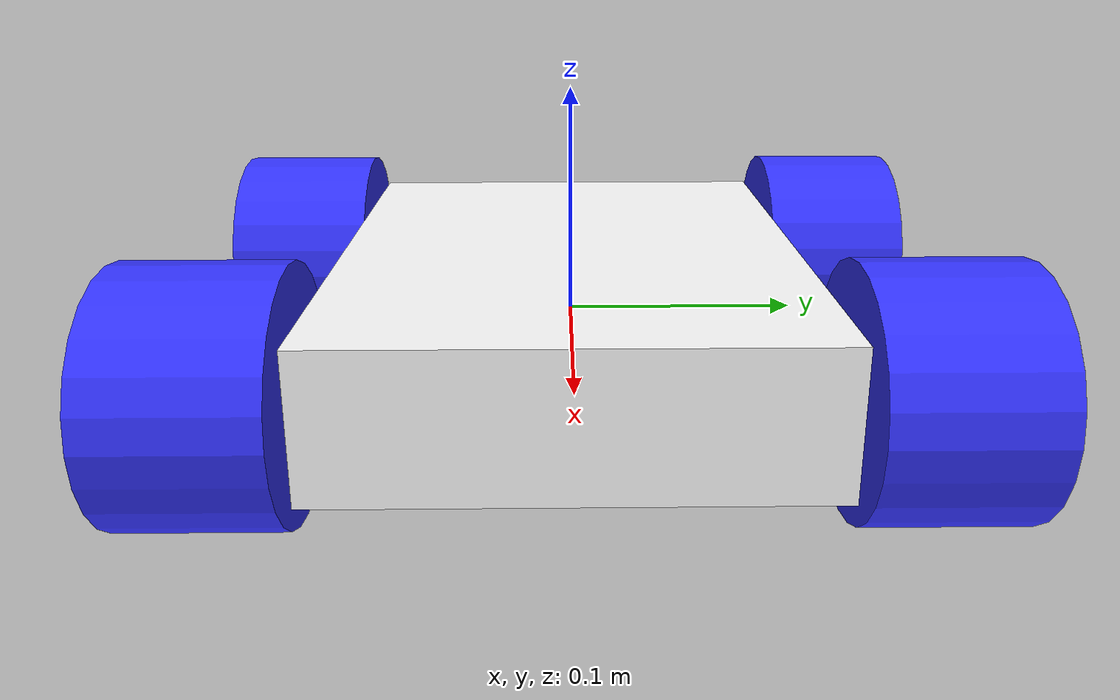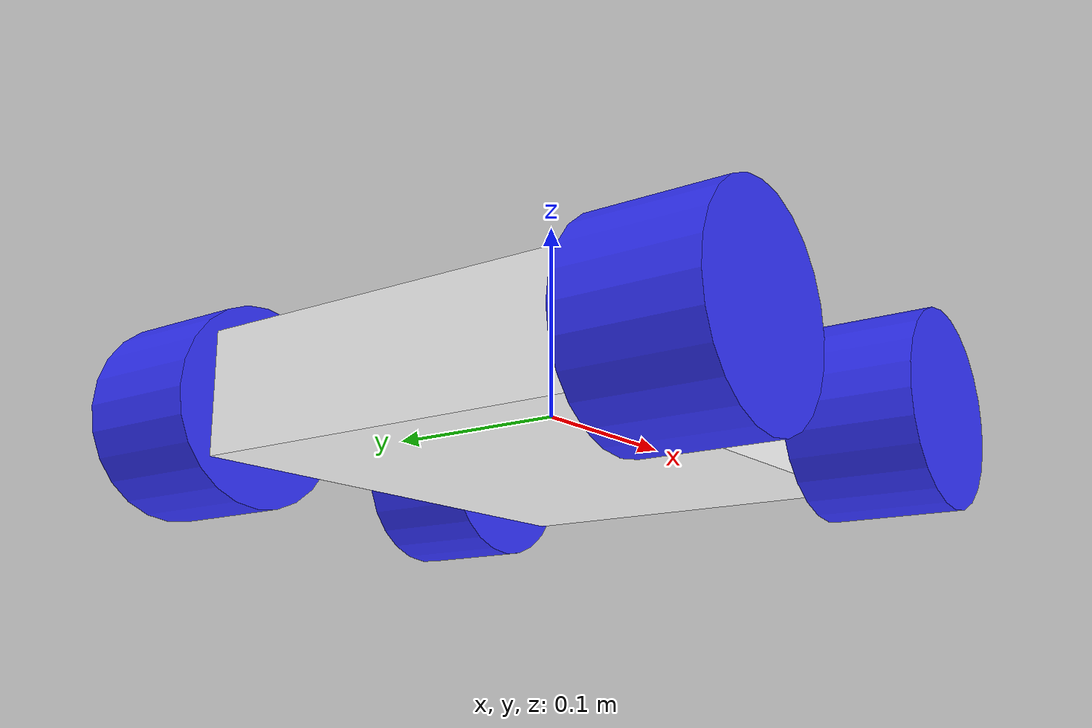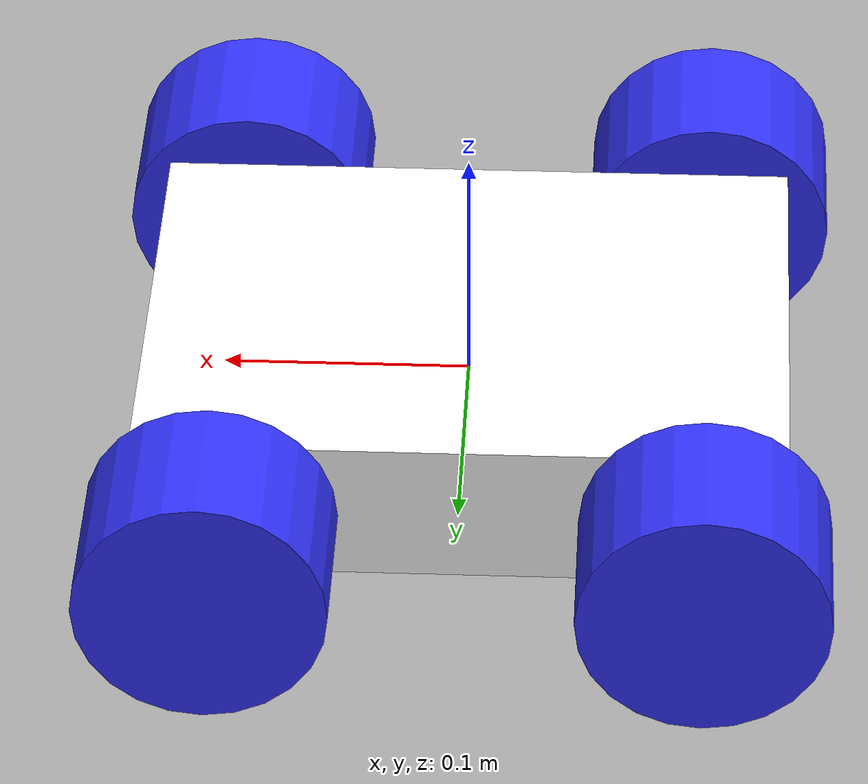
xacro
<?xml version="1.0"?>
<robot xmlns:xacro="http://www.ros.org/wiki/xacro"  name="robot">

    <xacro:include filename="inertial_macros.xacro" />

    <material name="white">
        <color rgba="1 1 1 1" />
    </material>

    <material name="orange">
        <color rgba="1 0.3 0.1 1" />
    </material>

    <material name="blue">
        <color rgba="0.2 0.2 1 1" />
    </material>

    <material name="black">
        <color rgba="0 0 0 1" />
    </material>

    <material name="red">
        <color rgba="1 0 0 1" />
    </material>

    <!--BASE LINK-->

    <link name="base_link">

    </link>

    <!--CHASSIS LINK-->

    <joint name="chassis_joint" type="fixed">
        <parent link="base_link"/>
        <child link="chassis"/>
        <origin xyz="-0.13 0 0"/>
    </joint>

    <link name="chassis">
        <visual>
            <origin xyz="0.13 0 0"/>
            <geometry>
                <box size="0.26 0.2 0.06"/>
            </geometry>
            <material name="white"/>
        </visual>
        <collision>
            <origin xyz="0.13 0 0"/>
            <geometry>
                <box size="0.26 0.2 0.06"/>
            </geometry>
        </collision>
        <xacro:inertial_box mass="2.5" x="0.26" y="0.2" z="0.06">
            <origin xyz="0.13 0 0" rpy="0 0 0"/>
        </xacro:inertial_box>
    </link>

    <gazebo reference="chassis">
        <material>Gazebo/White</material>
    </gazebo>

    <!--LEFT BACK WHEEL LINK-->

    <joint name="left_back_wheel_joint" type="continuous">
        <parent link="base_link"/>
        <child link="left_back_wheel"/>
        <origin xyz="-0.0975 0.135 0" rpy="-${pi/2} 0 0"/>
        <axis xyz="0 0 1"/>
    </joint>

    <link name="left_back_wheel">
        <visual>
            <geometry>
                <cylinder radius="0.05" length="0.065"/>
            </geometry>
            <material name="blue"/>
        </visual>
        <collision>
            <geometry>
                <cylinder radius="0.05" length="0.065"/>
            </geometry>
        </collision>
        <xacro:inertial_cylinder mass="0.5" length="0.065" radius="0.05">
            <origin xyz="0 0 0" rpy="0 0 0"/>
        </xacro:inertial_cylinder>
    </link>

    <gazebo reference="left_back_wheel">
        <material>Gazebo/Blue</material>
    </gazebo>

    <!--RIGHT BACK WHEEL LINK-->

    <joint name="right_back_wheel_joint" type="continuous">
        <parent link="base_link"/>
        <child link="right_back_wheel"/>
        <origin xyz="-0.0975 -0.135 0" rpy="${pi/2} 0 0"/>
        <axis xyz="0 0 -1"/>
    </joint>

    <link name="right_back_wheel">
        <visual>
            <geometry>
                <cylinder radius="0.05" length="0.065"/>
            </geometry>
            <material name="blue"/>
        </visual>
         <collision>
            <geometry>
                <cylinder radius="0.05" length="0.065"/>
            </geometry>
        </collision>
        <xacro:inertial_cylinder mass="0.5" length="0.065" radius="0.05">
            <origin xyz="0 0 0" rpy="0 0 0"/>
        </xacro:inertial_cylinder>
    </link>

    <gazebo reference="right_back_wheel">
        <material>Gazebo/Blue</material>
    </gazebo>

    <!--LEFT FRONT WHEEL LINK-->

    <joint name="left_front_wheel_joint" type="continuous">
        <parent link="base_link"/>
        <child link="left_front_wheel"/>
        <origin xyz="0.0975 0.135 0" rpy="-${pi/2} 0 0"/>
        <axis xyz="0 0 1"/>
    </joint>

    <link name="left_front_wheel">
        <visual>
            <geometry>
                <cylinder radius="0.05" length="0.065"/>
            </geometry>
            <material name="blue"/>
        </visual>
         <collision>
            <geometry>
                <cylinder radius="0.05" length="0.065"/>
            </geometry>
        </collision>
        <xacro:inertial_cylinder mass="0.5" length="0.065" radius="0.05">
            <origin xyz="0 0 0" rpy="0 0 0"/>
        </xacro:inertial_cylinder>
    </link>

    <gazebo reference="left_front_wheel">
        <material>Gazebo/Blue</material>
    </gazebo>

    <!--RIGHT FRONT WHEEL LINK-->

    <joint name="right_front_wheel_joint" type="continuous">
        <parent link="base_link"/>
        <child link="right_front_wheel"/>
        <origin xyz="0.0975 -0.135 0" rpy="${pi/2} 0 0"/>
        <axis xyz="0 0 -1"/>
    </joint>

    <link name="right_front_wheel">
        <visual>
            <geometry>
                <cylinder radius="0.05" length="0.065"/>
            </geometry>
            <material name="blue"/>
        </visual>
         <collision>
            <geometry>
                <cylinder radius="0.05" length="0.065"/>
            </geometry>
        </collision>
        <xacro:inertial_cylinder mass="0.5" length="0.065" radius="0.05">
            <origin xyz="0 0 0" rpy="0 0 0"/>
        </xacro:inertial_cylinder>
    </link>

    <gazebo reference="right_front_wheel">
        <material>Gazebo/Blue</material>
    </gazebo>

</robot>
